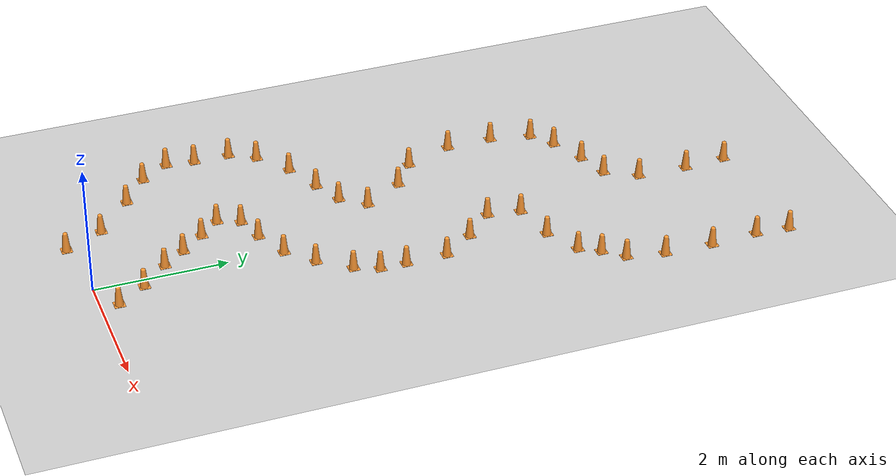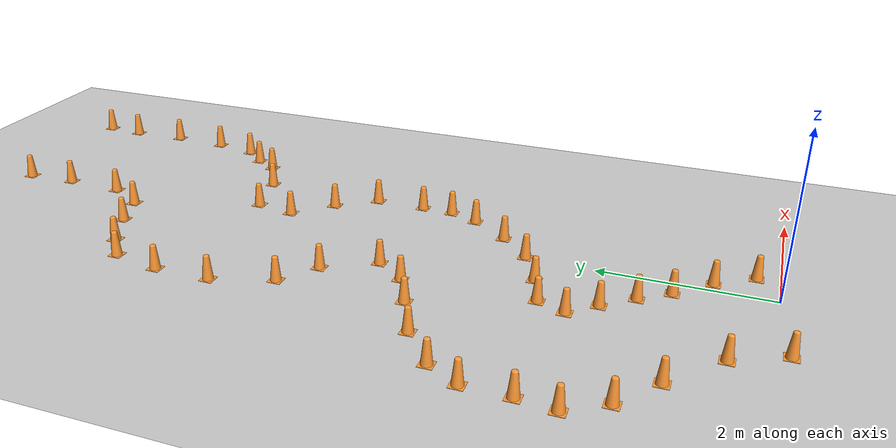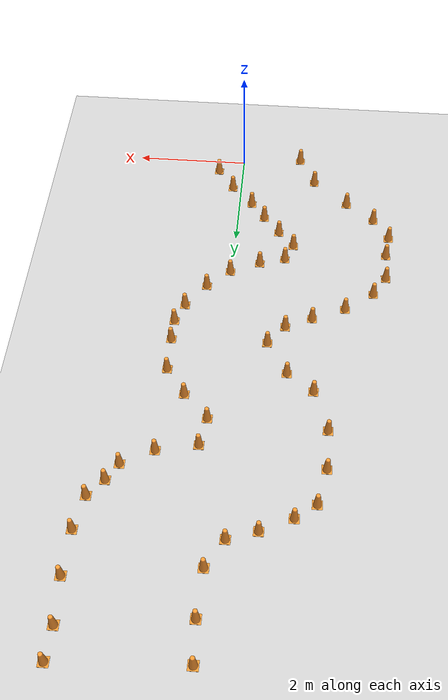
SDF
<sdf version="1.7">
 <world name="default">
  <light name="sun" type="directional">
   <pose>0 0 10 0 -0 0</pose>
   <diffuse>0.8 0.8 0.8 1</diffuse>
   <specular>0.2 0.2 0.2 1</specular>
   <attenuation>
    <range>1000</range>
    <constant>0.9</constant>
    <linear>0.01</linear>
    <quadratic>0.001</quadratic>
   </attenuation>
   <direction>-0.5 0.1 -0.9</direction>
   <spot><inner_angle>0</inner_angle><outer_angle>0</outer_angle><falloff>0</falloff></spot>
  </light>
  <model name="ground_plane">
   <static>1</static>
   <link name="link">
    <collision name="collision">
     <geometry><plane><normal>0 0 1</normal><size>100 100</size></plane></geometry>
     <surface>
      <contact><collide_bitmask>65535</collide_bitmask></contact>
      <friction><ode><mu>100</mu><mu2>50</mu2></ode></friction>
     </surface>
    </collision>
    <visual name="visual">
     <cast_shadows>0</cast_shadows>
     <geometry><plane><normal>0 0 1</normal><size>100 100</size></plane></geometry>
     <material>
      <script><uri>file://media/materials/scripts/gazebo.material</uri><name>Gazebo/Grey</name></script>
     </material>
    </visual>
   </link>
  </model>
  <gravity>0 0 -9.8</gravity>
  <magnetic_field>6e-06 2.3e-05 -4.2e-05</magnetic_field>
  <atmosphere type="adiabatic"/>
  <physics type="ode">
   <max_step_size>0.001</max_step_size>
   <real_time_factor>1</real_time_factor>
   <real_time_update_rate>1000</real_time_update_rate>
  </physics>
  <scene><ambient>0.4 0.4 0.4 1</ambient><background>0.7 0.7 0.7 1</background><shadows>1</shadows></scene>
  <spherical_coordinates>
   <surface_model>EARTH_WGS84</surface_model>
   <latitude_deg>0</latitude_deg>
   <longitude_deg>0</longitude_deg>
   <elevation>0</elevation>
   <heading_deg>0</heading_deg>
  </spherical_coordinates>
  <model name="cone">
   <pose>-1.09155 -0.129069 0.004992 1.57079 3e-06 2e-05</pose>
   <static>0</static>
   <link name="cone_link">
    <inertial>
     <mass>1</mass>
     <inertia><ixx>0.083</ixx><ixy>0</ixy><ixz>0</ixz><iyy>0.083</iyy><iyz>0</iyz><izz>0.083</izz></inertia>
    </inertial>
    <visual name="cone_visual">
     <material>
      <ambient>1 0.6 0.2 1</ambient>
      <diffuse>1 0.6 0.2 1</diffuse>
      <specular>0 0 0 0</specular>
      <emissive>0 0 0 1</emissive>
     </material>
     <geometry><mesh><uri>model://good_cone/meshes/cone.stl</uri><scale>0.001 0.001 0.001</scale></mesh></geometry>
    </visual>
    <collision name="cone_collision">
     <geometry><mesh><uri>model://good_cone/meshes/cone.stl</uri><scale>0.001 0.001 0.001</scale></mesh></geometry>
    </collision>
   </link>
  </model>
  <model name="cone_clone">
   <pose>-1.38096 0.458029 0.004999 1.57079 -3e-06 9e-06</pose>
   <static>0</static>
   <link name="cone_link">
    <inertial>
     <mass>1</mass>
     <inertia><ixx>0.083</ixx><ixy>0</ixy><ixz>0</ixz><iyy>0.083</iyy><iyz>0</iyz><izz>0.083</izz></inertia>
    </inertial>
    <visual name="cone_visual">
     <material>
      <ambient>1 0.6 0.2 1</ambient>
      <diffuse>1 0.6 0.2 1</diffuse>
      <specular>0 0 0 0</specular>
      <emissive>0 0 0 1</emissive>
     </material>
     <geometry><mesh><uri>model://good_cone/meshes/cone.stl</uri><scale>0.001 0.001 0.001</scale></mesh></geometry>
    </visual>
    <collision name="cone_collision">
     <geometry><mesh><uri>model://good_cone/meshes/cone.stl</uri><scale>0.001 0.001 0.001</scale></mesh></geometry>
    </collision>
   </link>
  </model>
  <model name="cone_clone_0">
   <pose>-2 1 0.004997 1.5708 -3e-06 3e-06</pose>
   <static>0</static>
   <link name="cone_link">
    <inertial>
     <mass>1</mass>
     <inertia><ixx>0.083</ixx><ixy>0</ixy><ixz>0</ixz><iyy>0.083</iyy><iyz>0</iyz><izz>0.083</izz></inertia>
    </inertial>
    <visual name="cone_visual">
     <material>
      <ambient>1 0.6 0.2 1</ambient>
      <diffuse>1 0.6 0.2 1</diffuse>
      <specular>0 0 0 0</specular>
      <emissive>0 0 0 1</emissive>
     </material>
     <geometry><mesh><uri>model://good_cone/meshes/cone.stl</uri><scale>0.001 0.001 0.001</scale></mesh></geometry>
    </visual>
    <collision name="cone_collision">
     <geometry><mesh><uri>model://good_cone/meshes/cone.stl</uri><scale>0.001 0.001 0.001</scale></mesh></geometry>
    </collision>
   </link>
  </model>
  <model name="cone_clone_1">
   <pose>-2.49827 1.38008 0.004999 1.57079 -5e-06 1.9e-05</pose>
   <static>0</static>
   <link name="cone_link">
    <inertial>
     <mass>1</mass>
     <inertia><ixx>0.083</ixx><ixy>0</ixy><ixz>0</ixz><iyy>0.083</iyy><iyz>0</iyz><izz>0.083</izz></inertia>
    </inertial>
    <visual name="cone_visual">
     <material>
      <ambient>1 0.6 0.2 1</ambient>
      <diffuse>1 0.6 0.2 1</diffuse>
      <specular>0 0 0 0</specular>
      <emissive>0 0 0 1</emissive>
     </material>
     <geometry><mesh><uri>model://good_cone/meshes/cone.stl</uri><scale>0.001 0.001 0.001</scale></mesh></geometry>
    </visual>
    <collision name="cone_collision">
     <geometry><mesh><uri>model://good_cone/meshes/cone.stl</uri><scale>0.001 0.001 0.001</scale></mesh></geometry>
    </collision>
   </link>
  </model>
  <model name="cone_clone_2">
   <pose>-2.77643 1.81388 0.004999 1.5708 -4e-06 6e-06</pose>
   <static>0</static>
   <link name="cone_link">
    <inertial>
     <mass>1</mass>
     <inertia><ixx>0.083</ixx><ixy>0</ixy><ixz>0</ixz><iyy>0.083</iyy><iyz>0</iyz><izz>0.083</izz></inertia>
    </inertial>
    <visual name="cone_visual">
     <material>
      <ambient>1 0.6 0.2 1</ambient>
      <diffuse>1 0.6 0.2 1</diffuse>
      <specular>0 0 0 0</specular>
      <emissive>0 0 0 1</emissive>
     </material>
     <geometry><mesh><uri>model://good_cone/meshes/cone.stl</uri><scale>0.001 0.001 0.001</scale></mesh></geometry>
    </visual>
    <collision name="cone_collision">
     <geometry><mesh><uri>model://good_cone/meshes/cone.stl</uri><scale>0.001 0.001 0.001</scale></mesh></geometry>
    </collision>
   </link>
  </model>
  <model name="cone_clone_3">
   <pose>-2.72163 2.24404 0.004999 1.57079 -5e-06 1.1e-05</pose>
   <static>0</static>
   <link name="cone_link">
    <inertial>
     <mass>1</mass>
     <inertia><ixx>0.083</ixx><ixy>0</ixy><ixz>0</ixz><iyy>0.083</iyy><iyz>0</iyz><izz>0.083</izz></inertia>
    </inertial>
    <visual name="cone_visual">
     <material>
      <ambient>1 0.6 0.2 1</ambient>
      <diffuse>1 0.6 0.2 1</diffuse>
      <specular>0 0 0 0</specular>
      <emissive>0 0 0 1</emissive>
     </material>
     <geometry><mesh><uri>model://good_cone/meshes/cone.stl</uri><scale>0.001 0.001 0.001</scale></mesh></geometry>
    </visual>
    <collision name="cone_collision">
     <geometry><mesh><uri>model://good_cone/meshes/cone.stl</uri><scale>0.001 0.001 0.001</scale></mesh></geometry>
    </collision>
   </link>
  </model>
  <model name="cone_clone_4">
   <pose>-2.71635 2.78369 0.004999 1.57079 -3e-06 2.1e-05</pose>
   <static>0</static>
   <link name="cone_link">
    <inertial>
     <mass>1</mass>
     <inertia><ixx>0.083</ixx><ixy>0</ixy><ixz>0</ixz><iyy>0.083</iyy><iyz>0</iyz><izz>0.083</izz></inertia>
    </inertial>
    <visual name="cone_visual">
     <material>
      <ambient>1 0.6 0.2 1</ambient>
      <diffuse>1 0.6 0.2 1</diffuse>
      <specular>0 0 0 0</specular>
      <emissive>0 0 0 1</emissive>
     </material>
     <geometry><mesh><uri>model://good_cone/meshes/cone.stl</uri><scale>0.001 0.001 0.001</scale></mesh></geometry>
    </visual>
    <collision name="cone_collision">
     <geometry><mesh><uri>model://good_cone/meshes/cone.stl</uri><scale>0.001 0.001 0.001</scale></mesh></geometry>
    </collision>
   </link>
  </model>
  <model name="cone_clone_5">
   <pose>-2.49564 3.16594 0.004999 1.57079 -3e-06 2.2e-05</pose>
   <static>0</static>
   <link name="cone_link">
    <inertial>
     <mass>1</mass>
     <inertia><ixx>0.083</ixx><ixy>0</ixy><ixz>0</ixz><iyy>0.083</iyy><iyz>0</iyz><izz>0.083</izz></inertia>
    </inertial>
    <visual name="cone_visual">
     <material>
      <ambient>1 0.6 0.2 1</ambient>
      <diffuse>1 0.6 0.2 1</diffuse>
      <specular>0 0 0 0</specular>
      <emissive>0 0 0 1</emissive>
     </material>
     <geometry><mesh><uri>model://good_cone/meshes/cone.stl</uri><scale>0.001 0.001 0.001</scale></mesh></geometry>
    </visual>
    <collision name="cone_collision">
     <geometry><mesh><uri>model://good_cone/meshes/cone.stl</uri><scale>0.001 0.001 0.001</scale></mesh></geometry>
    </collision>
   </link>
  </model>
  <model name="cone_clone_6">
   <pose>-2.0084 3.53918 0.004999 1.57079 -3e-06 1.8e-05</pose>
   <static>0</static>
   <link name="cone_link">
    <inertial>
     <mass>1</mass>
     <inertia><ixx>0.083</ixx><ixy>0</ixy><ixz>0</ixz><iyy>0.083</iyy><iyz>0</iyz><izz>0.083</izz></inertia>
    </inertial>
    <visual name="cone_visual">
     <material>
      <ambient>1 0.6 0.2 1</ambient>
      <diffuse>1 0.6 0.2 1</diffuse>
      <specular>0 0 0 0</specular>
      <emissive>0 0 0 1</emissive>
     </material>
     <geometry><mesh><uri>model://good_cone/meshes/cone.stl</uri><scale>0.001 0.001 0.001</scale></mesh></geometry>
    </visual>
    <collision name="cone_collision">
     <geometry><mesh><uri>model://good_cone/meshes/cone.stl</uri><scale>0.001 0.001 0.001</scale></mesh></geometry>
    </collision>
   </link>
  </model>
  <model name="cone_clone_7">
   <pose>-1.44962 3.78834 0.004999 1.57079 -3e-06 1.5e-05</pose>
   <static>0</static>
   <link name="cone_link">
    <inertial>
     <mass>1</mass>
     <inertia><ixx>0.083</ixx><ixy>0</ixy><ixz>0</ixz><iyy>0.083</iyy><iyz>0</iyz><izz>0.083</izz></inertia>
    </inertial>
    <visual name="cone_visual">
     <material>
      <ambient>1 0.6 0.2 1</ambient>
      <diffuse>1 0.6 0.2 1</diffuse>
      <specular>0 0 0 0</specular>
      <emissive>0 0 0 1</emissive>
     </material>
     <geometry><mesh><uri>model://good_cone/meshes/cone.stl</uri><scale>0.001 0.001 0.001</scale></mesh></geometry>
    </visual>
    <collision name="cone_collision">
     <geometry><mesh><uri>model://good_cone/meshes/cone.stl</uri><scale>0.001 0.001 0.001</scale></mesh></geometry>
    </collision>
   </link>
  </model>
  <model name="cone_clone_8">
   <pose>-1 4 0.005 1.5708 -0 2.2e-05</pose>
   <static>0</static>
   <link name="cone_link">
    <inertial>
     <mass>1</mass>
     <inertia><ixx>0.083</ixx><ixy>0</ixy><ixz>0</ixz><iyy>0.083</iyy><iyz>0</iyz><izz>0.083</izz></inertia>
    </inertial>
    <visual name="cone_visual">
     <material>
      <ambient>1 0.6 0.2 1</ambient>
      <diffuse>1 0.6 0.2 1</diffuse>
      <specular>0 0 0 0</specular>
      <emissive>0 0 0 1</emissive>
     </material>
     <geometry><mesh><uri>model://good_cone/meshes/cone.stl</uri><scale>0.001 0.001 0.001</scale></mesh></geometry>
    </visual>
    <collision name="cone_collision">
     <geometry><mesh><uri>model://good_cone/meshes/cone.stl</uri><scale>0.001 0.001 0.001</scale></mesh></geometry>
    </collision>
   </link>
  </model>
  <model name="cone_clone_9">
   <pose>-0.717053 4.36338 0.004999 1.57079 -3e-06 1.2e-05</pose>
   <static>0</static>
   <link name="cone_link">
    <inertial>
     <mass>1</mass>
     <inertia><ixx>0.083</ixx><ixy>0</ixy><ixz>0</ixz><iyy>0.083</iyy><iyz>0</iyz><izz>0.083</izz></inertia>
    </inertial>
    <visual name="cone_visual">
     <material>
      <ambient>1 0.6 0.2 1</ambient>
      <diffuse>1 0.6 0.2 1</diffuse>
      <specular>0 0 0 0</specular>
      <emissive>0 0 0 1</emissive>
     </material>
     <geometry><mesh><uri>model://good_cone/meshes/cone.stl</uri><scale>0.001 0.001 0.001</scale></mesh></geometry>
    </visual>
    <collision name="cone_collision">
     <geometry><mesh><uri>model://good_cone/meshes/cone.stl</uri><scale>0.001 0.001 0.001</scale></mesh></geometry>
    </collision>
   </link>
  </model>
  <model name="cone_clone_10">
   <pose>-1.07407 4.96708 0.004999 1.57079 -5e-06 1.3e-05</pose>
   <static>0</static>
   <link name="cone_link">
    <inertial>
     <mass>1</mass>
     <inertia><ixx>0.083</ixx><ixy>0</ixy><ixz>0</ixz><iyy>0.083</iyy><iyz>0</iyz><izz>0.083</izz></inertia>
    </inertial>
    <visual name="cone_visual">
     <material>
      <ambient>1 0.6 0.2 1</ambient>
      <diffuse>1 0.6 0.2 1</diffuse>
      <specular>0 0 0 0</specular>
      <emissive>0 0 0 1</emissive>
     </material>
     <geometry><mesh><uri>model://good_cone/meshes/cone.stl</uri><scale>0.001 0.001 0.001</scale></mesh></geometry>
    </visual>
    <collision name="cone_collision">
     <geometry><mesh><uri>model://good_cone/meshes/cone.stl</uri><scale>0.001 0.001 0.001</scale></mesh></geometry>
    </collision>
   </link>
  </model>
  <model name="cone_clone_11">
   <pose>-1.52345 5.29757 0.004999 1.57079 -3e-06 2.2e-05</pose>
   <static>0</static>
   <link name="cone_link">
    <inertial>
     <mass>1</mass>
     <inertia><ixx>0.083</ixx><ixy>0</ixy><ixz>0</ixz><iyy>0.083</iyy><iyz>0</iyz><izz>0.083</izz></inertia>
    </inertial>
    <visual name="cone_visual">
     <material>
      <ambient>1 0.6 0.2 1</ambient>
      <diffuse>1 0.6 0.2 1</diffuse>
      <specular>0 0 0 0</specular>
      <emissive>0 0 0 1</emissive>
     </material>
     <geometry><mesh><uri>model://good_cone/meshes/cone.stl</uri><scale>0.001 0.001 0.001</scale></mesh></geometry>
    </visual>
    <collision name="cone_collision">
     <geometry><mesh><uri>model://good_cone/meshes/cone.stl</uri><scale>0.001 0.001 0.001</scale></mesh></geometry>
    </collision>
   </link>
  </model>
  <model name="cone_clone_12">
   <pose>-1.77697 6.02306 0.005 1.57079 -0 2e-06</pose>
   <static>0</static>
   <link name="cone_link">
    <inertial>
     <mass>1</mass>
     <inertia><ixx>0.083</ixx><ixy>0</ixy><ixz>0</ixz><iyy>0.083</iyy><iyz>0</iyz><izz>0.083</izz></inertia>
    </inertial>
    <visual name="cone_visual">
     <material>
      <ambient>1 0.6 0.2 1</ambient>
      <diffuse>1 0.6 0.2 1</diffuse>
      <specular>0 0 0 0</specular>
      <emissive>0 0 0 1</emissive>
     </material>
     <geometry><mesh><uri>model://good_cone/meshes/cone.stl</uri><scale>0.001 0.001 0.001</scale></mesh></geometry>
    </visual>
    <collision name="cone_collision">
     <geometry><mesh><uri>model://good_cone/meshes/cone.stl</uri><scale>0.001 0.001 0.001</scale></mesh></geometry>
    </collision>
   </link>
  </model>
  <model name="cone_clone_13">
   <pose>-1.77661 6.72022 0.005 1.5708 -5e-06 1.4e-05</pose>
   <static>0</static>
   <link name="cone_link">
    <inertial>
     <mass>1</mass>
     <inertia><ixx>0.083</ixx><ixy>0</ixy><ixz>0</ixz><iyy>0.083</iyy><iyz>0</iyz><izz>0.083</izz></inertia>
    </inertial>
    <visual name="cone_visual">
     <material>
      <ambient>1 0.6 0.2 1</ambient>
      <diffuse>1 0.6 0.2 1</diffuse>
      <specular>0 0 0 0</specular>
      <emissive>0 0 0 1</emissive>
     </material>
     <geometry><mesh><uri>model://good_cone/meshes/cone.stl</uri><scale>0.001 0.001 0.001</scale></mesh></geometry>
    </visual>
    <collision name="cone_collision">
     <geometry><mesh><uri>model://good_cone/meshes/cone.stl</uri><scale>0.001 0.001 0.001</scale></mesh></geometry>
    </collision>
   </link>
  </model>
  <model name="cone_clone_14">
   <pose>-1.64803 7.33504 0.004999 1.57079 -3e-06 3e-05</pose>
   <static>0</static>
   <link name="cone_link">
    <inertial>
     <mass>1</mass>
     <inertia><ixx>0.083</ixx><ixy>0</ixy><ixz>0</ixz><iyy>0.083</iyy><iyz>0</iyz><izz>0.083</izz></inertia>
    </inertial>
    <visual name="cone_visual">
     <material>
      <ambient>1 0.6 0.2 1</ambient>
      <diffuse>1 0.6 0.2 1</diffuse>
      <specular>0 0 0 0</specular>
      <emissive>0 0 0 1</emissive>
     </material>
     <geometry><mesh><uri>model://good_cone/meshes/cone.stl</uri><scale>0.001 0.001 0.001</scale></mesh></geometry>
    </visual>
    <collision name="cone_collision">
     <geometry><mesh><uri>model://good_cone/meshes/cone.stl</uri><scale>0.001 0.001 0.001</scale></mesh></geometry>
    </collision>
   </link>
  </model>
  <model name="cone_clone_15">
   <pose>-1.31311 7.59105 0.004991 1.5708 5e-06 1e-06</pose>
   <static>0</static>
   <link name="cone_link">
    <inertial>
     <mass>1</mass>
     <inertia><ixx>0.083</ixx><ixy>0</ixy><ixz>0</ixz><iyy>0.083</iyy><iyz>0</iyz><izz>0.083</izz></inertia>
    </inertial>
    <visual name="cone_visual">
     <material>
      <ambient>1 0.6 0.2 1</ambient>
      <diffuse>1 0.6 0.2 1</diffuse>
      <specular>0 0 0 0</specular>
      <emissive>0 0 0 1</emissive>
     </material>
     <geometry><mesh><uri>model://good_cone/meshes/cone.stl</uri><scale>0.001 0.001 0.001</scale></mesh></geometry>
    </visual>
    <collision name="cone_collision">
     <geometry><mesh><uri>model://good_cone/meshes/cone.stl</uri><scale>0.001 0.001 0.001</scale></mesh></geometry>
    </collision>
   </link>
  </model>
  <model name="cone_clone_16">
   <pose>-0.799496 7.83721 0.004993 1.57079 3e-06 5e-06</pose>
   <static>0</static>
   <link name="cone_link">
    <inertial>
     <mass>1</mass>
     <inertia><ixx>0.083</ixx><ixy>0</ixy><ixz>0</ixz><iyy>0.083</iyy><iyz>0</iyz><izz>0.083</izz></inertia>
    </inertial>
    <visual name="cone_visual">
     <material>
      <ambient>1 0.6 0.2 1</ambient>
      <diffuse>1 0.6 0.2 1</diffuse>
      <specular>0 0 0 0</specular>
      <emissive>0 0 0 1</emissive>
     </material>
     <geometry><mesh><uri>model://good_cone/meshes/cone.stl</uri><scale>0.001 0.001 0.001</scale></mesh></geometry>
    </visual>
    <collision name="cone_collision">
     <geometry><mesh><uri>model://good_cone/meshes/cone.stl</uri><scale>0.001 0.001 0.001</scale></mesh></geometry>
    </collision>
   </link>
  </model>
  <model name="cone_clone_17">
   <pose>-0.321672 8.00231 0.005 1.5708 -0 2e-06</pose>
   <static>0</static>
   <link name="cone_link">
    <inertial>
     <mass>1</mass>
     <inertia><ixx>0.083</ixx><ixy>0</ixy><ixz>0</ixz><iyy>0.083</iyy><iyz>0</iyz><izz>0.083</izz></inertia>
    </inertial>
    <visual name="cone_visual">
     <material>
      <ambient>1 0.6 0.2 1</ambient>
      <diffuse>1 0.6 0.2 1</diffuse>
      <specular>0 0 0 0</specular>
      <emissive>0 0 0 1</emissive>
     </material>
     <geometry><mesh><uri>model://good_cone/meshes/cone.stl</uri><scale>0.001 0.001 0.001</scale></mesh></geometry>
    </visual>
    <collision name="cone_collision">
     <geometry><mesh><uri>model://good_cone/meshes/cone.stl</uri><scale>0.001 0.001 0.001</scale></mesh></geometry>
    </collision>
   </link>
  </model>
  <model name="cone_clone_18">
   <pose>-0.051546 8.46904 0.004999 1.57079 -4e-06 1.1e-05</pose>
   <static>0</static>
   <link name="cone_link">
    <inertial>
     <mass>1</mass>
     <inertia><ixx>0.083</ixx><ixy>0</ixy><ixz>0</ixz><iyy>0.083</iyy><iyz>0</iyz><izz>0.083</izz></inertia>
    </inertial>
    <visual name="cone_visual">
     <material>
      <ambient>1 0.6 0.2 1</ambient>
      <diffuse>1 0.6 0.2 1</diffuse>
      <specular>0 0 0 0</specular>
      <emissive>0 0 0 1</emissive>
     </material>
     <geometry><mesh><uri>model://good_cone/meshes/cone.stl</uri><scale>0.001 0.001 0.001</scale></mesh></geometry>
    </visual>
    <collision name="cone_collision">
     <geometry><mesh><uri>model://good_cone/meshes/cone.stl</uri><scale>0.001 0.001 0.001</scale></mesh></geometry>
    </collision>
   </link>
  </model>
  <model name="cone_clone_19">
   <pose>-0.01863 9.23091 0.004999 1.57079 -3e-06 1.9e-05</pose>
   <static>0</static>
   <link name="cone_link">
    <inertial>
     <mass>1</mass>
     <inertia><ixx>0.083</ixx><ixy>0</ixy><ixz>0</ixz><iyy>0.083</iyy><iyz>0</iyz><izz>0.083</izz></inertia>
    </inertial>
    <visual name="cone_visual">
     <material>
      <ambient>1 0.6 0.2 1</ambient>
      <diffuse>1 0.6 0.2 1</diffuse>
      <specular>0 0 0 0</specular>
      <emissive>0 0 0 1</emissive>
     </material>
     <geometry><mesh><uri>model://good_cone/meshes/cone.stl</uri><scale>0.001 0.001 0.001</scale></mesh></geometry>
    </visual>
    <collision name="cone_collision">
     <geometry><mesh><uri>model://good_cone/meshes/cone.stl</uri><scale>0.001 0.001 0.001</scale></mesh></geometry>
    </collision>
   </link>
  </model>
  <model name="cone_clone_20">
   <pose>-0.051414 9.8788 0.005 1.5708 4e-06 3e-06</pose>
   <static>0</static>
   <link name="cone_link">
    <inertial>
     <mass>1</mass>
     <inertia><ixx>0.083</ixx><ixy>0</ixy><ixz>0</ixz><iyy>0.083</iyy><iyz>0</iyz><izz>0.083</izz></inertia>
    </inertial>
    <visual name="cone_visual">
     <material>
      <ambient>1 0.6 0.2 1</ambient>
      <diffuse>1 0.6 0.2 1</diffuse>
      <specular>0 0 0 0</specular>
      <emissive>0 0 0 1</emissive>
     </material>
     <geometry><mesh><uri>model://good_cone/meshes/cone.stl</uri><scale>0.001 0.001 0.001</scale></mesh></geometry>
    </visual>
    <collision name="cone_collision">
     <geometry><mesh><uri>model://good_cone/meshes/cone.stl</uri><scale>0.001 0.001 0.001</scale></mesh></geometry>
    </collision>
   </link>
  </model>
  <model name="cone_clone_21">
   <pose>0.459665 0.265155 0.004999 1.57079 -3e-06 2.5e-05</pose>
   <static>0</static>
   <link name="cone_link">
    <inertial>
     <mass>1</mass>
     <inertia><ixx>0.083</ixx><ixy>0</ixy><ixz>0</ixz><iyy>0.083</iyy><iyz>0</iyz><izz>0.083</izz></inertia>
    </inertial>
    <visual name="cone_visual">
     <material>
      <ambient>1 0.6 0.2 1</ambient>
      <diffuse>1 0.6 0.2 1</diffuse>
      <specular>0 0 0 0</specular>
      <emissive>0 0 0 1</emissive>
     </material>
     <geometry><mesh><uri>model://good_cone/meshes/cone.stl</uri><scale>0.001 0.001 0.001</scale></mesh></geometry>
    </visual>
    <collision name="cone_collision">
     <geometry><mesh><uri>model://good_cone/meshes/cone.stl</uri><scale>0.001 0.001 0.001</scale></mesh></geometry>
    </collision>
   </link>
  </model>
  <model name="cone_clone_22">
   <pose>0.157638 0.70832 0.005 1.5708 -0 2e-05</pose>
   <static>0</static>
   <link name="cone_link">
    <inertial>
     <mass>1</mass>
     <inertia><ixx>0.083</ixx><ixy>0</ixy><ixz>0</ixz><iyy>0.083</iyy><iyz>0</iyz><izz>0.083</izz></inertia>
    </inertial>
    <visual name="cone_visual">
     <material>
      <ambient>1 0.6 0.2 1</ambient>
      <diffuse>1 0.6 0.2 1</diffuse>
      <specular>0 0 0 0</specular>
      <emissive>0 0 0 1</emissive>
     </material>
     <geometry><mesh><uri>model://good_cone/meshes/cone.stl</uri><scale>0.001 0.001 0.001</scale></mesh></geometry>
    </visual>
    <collision name="cone_collision">
     <geometry><mesh><uri>model://good_cone/meshes/cone.stl</uri><scale>0.001 0.001 0.001</scale></mesh></geometry>
    </collision>
   </link>
  </model>
  <model name="cone_clone_23">
   <pose>-0.22945 1.11189 0.004999 1.57079 -3e-06 1.2e-05</pose>
   <static>0</static>
   <link name="cone_link">
    <inertial>
     <mass>1</mass>
     <inertia><ixx>0.083</ixx><ixy>0</ixy><ixz>0</ixz><iyy>0.083</iyy><iyz>0</iyz><izz>0.083</izz></inertia>
    </inertial>
    <visual name="cone_visual">
     <material>
      <ambient>1 0.6 0.2 1</ambient>
      <diffuse>1 0.6 0.2 1</diffuse>
      <specular>0 0 0 0</specular>
      <emissive>0 0 0 1</emissive>
     </material>
     <geometry><mesh><uri>model://good_cone/meshes/cone.stl</uri><scale>0.001 0.001 0.001</scale></mesh></geometry>
    </visual>
    <collision name="cone_collision">
     <geometry><mesh><uri>model://good_cone/meshes/cone.stl</uri><scale>0.001 0.001 0.001</scale></mesh></geometry>
    </collision>
   </link>
  </model>
  <model name="cone_clone_24">
   <pose>-0.485588 1.45669 0.005 1.5708 -0 2.4e-05</pose>
   <static>0</static>
   <link name="cone_link">
    <inertial>
     <mass>1</mass>
     <inertia><ixx>0.083</ixx><ixy>0</ixy><ixz>0</ixz><iyy>0.083</iyy><iyz>0</iyz><izz>0.083</izz></inertia>
    </inertial>
    <visual name="cone_visual">
     <material>
      <ambient>1 0.6 0.2 1</ambient>
      <diffuse>1 0.6 0.2 1</diffuse>
      <specular>0 0 0 0</specular>
      <emissive>0 0 0 1</emissive>
     </material>
     <geometry><mesh><uri>model://good_cone/meshes/cone.stl</uri><scale>0.001 0.001 0.001</scale></mesh></geometry>
    </visual>
    <collision name="cone_collision">
     <geometry><mesh><uri>model://good_cone/meshes/cone.stl</uri><scale>0.001 0.001 0.001</scale></mesh></geometry>
    </collision>
   </link>
  </model>
  <model name="cone_clone_25">
   <pose>-0.775155 1.81317 0.005 1.57079 -0 1.2e-05</pose>
   <static>0</static>
   <link name="cone_link">
    <inertial>
     <mass>1</mass>
     <inertia><ixx>0.083</ixx><ixy>0</ixy><ixz>0</ixz><iyy>0.083</iyy><iyz>0</iyz><izz>0.083</izz></inertia>
    </inertial>
    <visual name="cone_visual">
     <material>
      <ambient>1 0.6 0.2 1</ambient>
      <diffuse>1 0.6 0.2 1</diffuse>
      <specular>0 0 0 0</specular>
      <emissive>0 0 0 1</emissive>
     </material>
     <geometry><mesh><uri>model://good_cone/meshes/cone.stl</uri><scale>0.001 0.001 0.001</scale></mesh></geometry>
    </visual>
    <collision name="cone_collision">
     <geometry><mesh><uri>model://good_cone/meshes/cone.stl</uri><scale>0.001 0.001 0.001</scale></mesh></geometry>
    </collision>
   </link>
  </model>
  <model name="cone_clone_26">
   <pose>-1.0523 2.12305 0.005 1.5708 -0 1.3e-05</pose>
   <static>0</static>
   <link name="cone_link">
    <inertial>
     <mass>1</mass>
     <inertia><ixx>0.083</ixx><ixy>0</ixy><ixz>0</ixz><iyy>0.083</iyy><iyz>0</iyz><izz>0.083</izz></inertia>
    </inertial>
    <visual name="cone_visual">
     <material>
      <ambient>1 0.6 0.2 1</ambient>
      <diffuse>1 0.6 0.2 1</diffuse>
      <specular>0 0 0 0</specular>
      <emissive>0 0 0 1</emissive>
     </material>
     <geometry><mesh><uri>model://good_cone/meshes/cone.stl</uri><scale>0.001 0.001 0.001</scale></mesh></geometry>
    </visual>
    <collision name="cone_collision">
     <geometry><mesh><uri>model://good_cone/meshes/cone.stl</uri><scale>0.001 0.001 0.001</scale></mesh></geometry>
    </collision>
   </link>
  </model>
  <model name="cone_clone_27">
   <pose>-0.916692 2.45594 0.004999 1.57079 -5e-06 1e-06</pose>
   <static>0</static>
   <link name="cone_link">
    <inertial>
     <mass>1</mass>
     <inertia><ixx>0.083</ixx><ixy>0</ixy><ixz>0</ixz><iyy>0.083</iyy><iyz>0</iyz><izz>0.083</izz></inertia>
    </inertial>
    <visual name="cone_visual">
     <material>
      <ambient>1 0.6 0.2 1</ambient>
      <diffuse>1 0.6 0.2 1</diffuse>
      <specular>0 0 0 0</specular>
      <emissive>0 0 0 1</emissive>
     </material>
     <geometry><mesh><uri>model://good_cone/meshes/cone.stl</uri><scale>0.001 0.001 0.001</scale></mesh></geometry>
    </visual>
    <collision name="cone_collision">
     <geometry><mesh><uri>model://good_cone/meshes/cone.stl</uri><scale>0.001 0.001 0.001</scale></mesh></geometry>
    </collision>
   </link>
  </model>
  <model name="cone_clone_28">
   <pose>-0.474531 2.59084 0.004999 1.57079 -5e-06 1e-05</pose>
   <static>0</static>
   <link name="cone_link">
    <inertial>
     <mass>1</mass>
     <inertia><ixx>0.083</ixx><ixy>0</ixy><ixz>0</ixz><iyy>0.083</iyy><iyz>0</iyz><izz>0.083</izz></inertia>
    </inertial>
    <visual name="cone_visual">
     <material>
      <ambient>1 0.6 0.2 1</ambient>
      <diffuse>1 0.6 0.2 1</diffuse>
      <specular>0 0 0 0</specular>
      <emissive>0 0 0 1</emissive>
     </material>
     <geometry><mesh><uri>model://good_cone/meshes/cone.stl</uri><scale>0.001 0.001 0.001</scale></mesh></geometry>
    </visual>
    <collision name="cone_collision">
     <geometry><mesh><uri>model://good_cone/meshes/cone.stl</uri><scale>0.001 0.001 0.001</scale></mesh></geometry>
    </collision>
   </link>
  </model>
  <model name="cone_clone_29">
   <pose>0.032959 2.82293 0.005 1.5708 1e-06 1e-06</pose>
   <static>0</static>
   <link name="cone_link">
    <inertial>
     <mass>1</mass>
     <inertia><ixx>0.083</ixx><ixy>0</ixy><ixz>0</ixz><iyy>0.083</iyy><iyz>0</iyz><izz>0.083</izz></inertia>
    </inertial>
    <visual name="cone_visual">
     <material>
      <ambient>1 0.6 0.2 1</ambient>
      <diffuse>1 0.6 0.2 1</diffuse>
      <specular>0 0 0 0</specular>
      <emissive>0 0 0 1</emissive>
     </material>
     <geometry><mesh><uri>model://good_cone/meshes/cone.stl</uri><scale>0.001 0.001 0.001</scale></mesh></geometry>
    </visual>
    <collision name="cone_collision">
     <geometry><mesh><uri>model://good_cone/meshes/cone.stl</uri><scale>0.001 0.001 0.001</scale></mesh></geometry>
    </collision>
   </link>
  </model>
  <model name="cone_clone_30">
   <pose>0.416704 3.18648 0.004993 1.57079 3e-06 1e-06</pose>
   <static>0</static>
   <link name="cone_link">
    <inertial>
     <mass>1</mass>
     <inertia><ixx>0.083</ixx><ixy>0</ixy><ixz>0</ixz><iyy>0.083</iyy><iyz>0</iyz><izz>0.083</izz></inertia>
    </inertial>
    <visual name="cone_visual">
     <material>
      <ambient>1 0.6 0.2 1</ambient>
      <diffuse>1 0.6 0.2 1</diffuse>
      <specular>0 0 0 0</specular>
      <emissive>0 0 0 1</emissive>
     </material>
     <geometry><mesh><uri>model://good_cone/meshes/cone.stl</uri><scale>0.001 0.001 0.001</scale></mesh></geometry>
    </visual>
    <collision name="cone_collision">
     <geometry><mesh><uri>model://good_cone/meshes/cone.stl</uri><scale>0.001 0.001 0.001</scale></mesh></geometry>
    </collision>
   </link>
  </model>
  <model name="cone_clone_31">
   <pose>0.750006 3.64538 0.004993 1.57079 3e-06 3e-06</pose>
   <static>0</static>
   <link name="cone_link">
    <inertial>
     <mass>1</mass>
     <inertia><ixx>0.083</ixx><ixy>0</ixy><ixz>0</ixz><iyy>0.083</iyy><iyz>0</iyz><izz>0.083</izz></inertia>
    </inertial>
    <visual name="cone_visual">
     <material>
      <ambient>1 0.6 0.2 1</ambient>
      <diffuse>1 0.6 0.2 1</diffuse>
      <specular>0 0 0 0</specular>
      <emissive>0 0 0 1</emissive>
     </material>
     <geometry><mesh><uri>model://good_cone/meshes/cone.stl</uri><scale>0.001 0.001 0.001</scale></mesh></geometry>
    </visual>
    <collision name="cone_collision">
     <geometry><mesh><uri>model://good_cone/meshes/cone.stl</uri><scale>0.001 0.001 0.001</scale></mesh></geometry>
    </collision>
   </link>
  </model>
  <model name="cone_clone_32">
   <pose>0.901349 4.39865 0.004991 1.5708 5e-06 3e-06</pose>
   <static>0</static>
   <link name="cone_link">
    <inertial>
     <mass>1</mass>
     <inertia><ixx>0.083</ixx><ixy>0</ixy><ixz>0</ixz><iyy>0.083</iyy><iyz>0</iyz><izz>0.083</izz></inertia>
    </inertial>
    <visual name="cone_visual">
     <material>
      <ambient>1 0.6 0.2 1</ambient>
      <diffuse>1 0.6 0.2 1</diffuse>
      <specular>0 0 0 0</specular>
      <emissive>0 0 0 1</emissive>
     </material>
     <geometry><mesh><uri>model://good_cone/meshes/cone.stl</uri><scale>0.001 0.001 0.001</scale></mesh></geometry>
    </visual>
    <collision name="cone_collision">
     <geometry><mesh><uri>model://good_cone/meshes/cone.stl</uri><scale>0.001 0.001 0.001</scale></mesh></geometry>
    </collision>
   </link>
  </model>
  <model name="cone_clone_33">
   <pose>0.89621 5.0221 0.005 1.5708 -2e-06 4e-06</pose>
   <static>0</static>
   <link name="cone_link">
    <inertial>
     <mass>1</mass>
     <inertia><ixx>0.083</ixx><ixy>0</ixy><ixz>0</ixz><iyy>0.083</iyy><iyz>0</iyz><izz>0.083</izz></inertia>
    </inertial>
    <visual name="cone_visual">
     <material>
      <ambient>1 0.6 0.2 1</ambient>
      <diffuse>1 0.6 0.2 1</diffuse>
      <specular>0 0 0 0</specular>
      <emissive>0 0 0 1</emissive>
     </material>
     <geometry><mesh><uri>model://good_cone/meshes/cone.stl</uri><scale>0.001 0.001 0.001</scale></mesh></geometry>
    </visual>
    <collision name="cone_collision">
     <geometry><mesh><uri>model://good_cone/meshes/cone.stl</uri><scale>0.001 0.001 0.001</scale></mesh></geometry>
    </collision>
   </link>
  </model>
  <model name="cone_clone_34">
   <pose>0.561032 5.50142 0.004999 1.57079 -3e-06 1.3e-05</pose>
   <static>0</static>
   <link name="cone_link">
    <inertial>
     <mass>1</mass>
     <inertia><ixx>0.083</ixx><ixy>0</ixy><ixz>0</ixz><iyy>0.083</iyy><iyz>0</iyz><izz>0.083</izz></inertia>
    </inertial>
    <visual name="cone_visual">
     <material>
      <ambient>1 0.6 0.2 1</ambient>
      <diffuse>1 0.6 0.2 1</diffuse>
      <specular>0 0 0 0</specular>
      <emissive>0 0 0 1</emissive>
     </material>
     <geometry><mesh><uri>model://good_cone/meshes/cone.stl</uri><scale>0.001 0.001 0.001</scale></mesh></geometry>
    </visual>
    <collision name="cone_collision">
     <geometry><mesh><uri>model://good_cone/meshes/cone.stl</uri><scale>0.001 0.001 0.001</scale></mesh></geometry>
    </collision>
   </link>
  </model>
  <model name="cone_clone_35">
   <pose>0.893771 4.00441 0.005 1.5708 -0 1.1e-05</pose>
   <static>0</static>
   <link name="cone_link">
    <inertial>
     <mass>1</mass>
     <inertia><ixx>0.083</ixx><ixy>0</ixy><ixz>0</ixz><iyy>0.083</iyy><iyz>0</iyz><izz>0.083</izz></inertia>
    </inertial>
    <visual name="cone_visual">
     <material>
      <ambient>1 0.6 0.2 1</ambient>
      <diffuse>1 0.6 0.2 1</diffuse>
      <specular>0 0 0 0</specular>
      <emissive>0 0 0 1</emissive>
     </material>
     <geometry><mesh><uri>model://good_cone/meshes/cone.stl</uri><scale>0.001 0.001 0.001</scale></mesh></geometry>
    </visual>
    <collision name="cone_collision">
     <geometry><mesh><uri>model://good_cone/meshes/cone.stl</uri><scale>0.001 0.001 0.001</scale></mesh></geometry>
    </collision>
   </link>
  </model>
  <model name="cone_clone_36">
   <pose>0.143882 5.93811 0.005 1.57079 -0 1e-06</pose>
   <static>0</static>
   <link name="cone_link">
    <inertial>
     <mass>1</mass>
     <inertia><ixx>0.083</ixx><ixy>0</ixy><ixz>0</ixz><iyy>0.083</iyy><iyz>0</iyz><izz>0.083</izz></inertia>
    </inertial>
    <visual name="cone_visual">
     <material>
      <ambient>1 0.6 0.2 1</ambient>
      <diffuse>1 0.6 0.2 1</diffuse>
      <specular>0 0 0 0</specular>
      <emissive>0 0 0 1</emissive>
     </material>
     <geometry><mesh><uri>model://good_cone/meshes/cone.stl</uri><scale>0.001 0.001 0.001</scale></mesh></geometry>
    </visual>
    <collision name="cone_collision">
     <geometry><mesh><uri>model://good_cone/meshes/cone.stl</uri><scale>0.001 0.001 0.001</scale></mesh></geometry>
    </collision>
   </link>
  </model>
  <model name="cone_clone_37">
   <pose>0.226882 6.43467 0.005 1.5708 -0 1e-06</pose>
   <static>0</static>
   <link name="cone_link">
    <inertial>
     <mass>1</mass>
     <inertia><ixx>0.083</ixx><ixy>0</ixy><ixz>0</ixz><iyy>0.083</iyy><iyz>0</iyz><izz>0.083</izz></inertia>
    </inertial>
    <visual name="cone_visual">
     <material>
      <ambient>1 0.6 0.2 1</ambient>
      <diffuse>1 0.6 0.2 1</diffuse>
      <specular>0 0 0 0</specular>
      <emissive>0 0 0 1</emissive>
     </material>
     <geometry><mesh><uri>model://good_cone/meshes/cone.stl</uri><scale>0.001 0.001 0.001</scale></mesh></geometry>
    </visual>
    <collision name="cone_collision">
     <geometry><mesh><uri>model://good_cone/meshes/cone.stl</uri><scale>0.001 0.001 0.001</scale></mesh></geometry>
    </collision>
   </link>
  </model>
  <model name="cone_clone_38">
   <pose>0.895214 6.58164 0.005 1.5708 -0 1e-06</pose>
   <static>0</static>
   <link name="cone_link">
    <inertial>
     <mass>1</mass>
     <inertia><ixx>0.083</ixx><ixy>0</ixy><ixz>0</ixz><iyy>0.083</iyy><iyz>0</iyz><izz>0.083</izz></inertia>
    </inertial>
    <visual name="cone_visual">
     <material>
      <ambient>1 0.6 0.2 1</ambient>
      <diffuse>1 0.6 0.2 1</diffuse>
      <specular>0 0 0 0</specular>
      <emissive>0 0 0 1</emissive>
     </material>
     <geometry><mesh><uri>model://good_cone/meshes/cone.stl</uri><scale>0.001 0.001 0.001</scale></mesh></geometry>
    </visual>
    <collision name="cone_collision">
     <geometry><mesh><uri>model://good_cone/meshes/cone.stl</uri><scale>0.001 0.001 0.001</scale></mesh></geometry>
    </collision>
   </link>
  </model>
  <model name="cone_clone_39">
   <pose>1.41072 6.85968 0.005 1.5708 -0 1e-06</pose>
   <static>0</static>
   <link name="cone_link">
    <inertial>
     <mass>1</mass>
     <inertia><ixx>0.083</ixx><ixy>0</ixy><ixz>0</ixz><iyy>0.083</iyy><iyz>0</iyz><izz>0.083</izz></inertia>
    </inertial>
    <visual name="cone_visual">
     <material>
      <ambient>1 0.6 0.2 1</ambient>
      <diffuse>1 0.6 0.2 1</diffuse>
      <specular>0 0 0 0</specular>
      <emissive>0 0 0 1</emissive>
     </material>
     <geometry><mesh><uri>model://good_cone/meshes/cone.stl</uri><scale>0.001 0.001 0.001</scale></mesh></geometry>
    </visual>
    <collision name="cone_collision">
     <geometry><mesh><uri>model://good_cone/meshes/cone.stl</uri><scale>0.001 0.001 0.001</scale></mesh></geometry>
    </collision>
   </link>
  </model>
  <model name="cone_clone_40">
   <pose>1.58683 7.15592 0.005 1.5708 -0 1e-06</pose>
   <static>0</static>
   <link name="cone_link">
    <inertial>
     <mass>1</mass>
     <inertia><ixx>0.083</ixx><ixy>0</ixy><ixz>0</ixz><iyy>0.083</iyy><iyz>0</iyz><izz>0.083</izz></inertia>
    </inertial>
    <visual name="cone_visual">
     <material>
      <ambient>1 0.6 0.2 1</ambient>
      <diffuse>1 0.6 0.2 1</diffuse>
      <specular>0 0 0 0</specular>
      <emissive>0 0 0 1</emissive>
     </material>
     <geometry><mesh><uri>model://good_cone/meshes/cone.stl</uri><scale>0.001 0.001 0.001</scale></mesh></geometry>
    </visual>
    <collision name="cone_collision">
     <geometry><mesh><uri>model://good_cone/meshes/cone.stl</uri><scale>0.001 0.001 0.001</scale></mesh></geometry>
    </collision>
   </link>
  </model>
  <model name="cone_clone_41">
   <pose>1.83207 7.44284 0.005 1.57079 -0 1e-06</pose>
   <static>0</static>
   <link name="cone_link">
    <inertial>
     <mass>1</mass>
     <inertia><ixx>0.083</ixx><ixy>0</ixy><ixz>0</ixz><iyy>0.083</iyy><iyz>0</iyz><izz>0.083</izz></inertia>
    </inertial>
    <visual name="cone_visual">
     <material>
      <ambient>1 0.6 0.2 1</ambient>
      <diffuse>1 0.6 0.2 1</diffuse>
      <specular>0 0 0 0</specular>
      <emissive>0 0 0 1</emissive>
     </material>
     <geometry><mesh><uri>model://good_cone/meshes/cone.stl</uri><scale>0.001 0.001 0.001</scale></mesh></geometry>
    </visual>
    <collision name="cone_collision">
     <geometry><mesh><uri>model://good_cone/meshes/cone.stl</uri><scale>0.001 0.001 0.001</scale></mesh></geometry>
    </collision>
   </link>
  </model>
  <model name="cone_clone_42">
   <pose>1.94249 8.00965 0.005 1.57079 -0 1e-06</pose>
   <static>0</static>
   <link name="cone_link">
    <inertial>
     <mass>1</mass>
     <inertia><ixx>0.083</ixx><ixy>0</ixy><ixz>0</ixz><iyy>0.083</iyy><iyz>0</iyz><izz>0.083</izz></inertia>
    </inertial>
    <visual name="cone_visual">
     <material>
      <ambient>1 0.6 0.2 1</ambient>
      <diffuse>1 0.6 0.2 1</diffuse>
      <specular>0 0 0 0</specular>
      <emissive>0 0 0 1</emissive>
     </material>
     <geometry><mesh><uri>model://good_cone/meshes/cone.stl</uri><scale>0.001 0.001 0.001</scale></mesh></geometry>
    </visual>
    <collision name="cone_collision">
     <geometry><mesh><uri>model://good_cone/meshes/cone.stl</uri><scale>0.001 0.001 0.001</scale></mesh></geometry>
    </collision>
   </link>
  </model>
  <model name="cone_clone_43">
   <pose>1.97236 8.74033 0.005 1.5708 -0 1e-06</pose>
   <static>0</static>
   <link name="cone_link">
    <inertial>
     <mass>1</mass>
     <inertia><ixx>0.083</ixx><ixy>0</ixy><ixz>0</ixz><iyy>0.083</iyy><iyz>0</iyz><izz>0.083</izz></inertia>
    </inertial>
    <visual name="cone_visual">
     <material>
      <ambient>1 0.6 0.2 1</ambient>
      <diffuse>1 0.6 0.2 1</diffuse>
      <specular>0 0 0 0</specular>
      <emissive>0 0 0 1</emissive>
     </material>
     <geometry><mesh><uri>model://good_cone/meshes/cone.stl</uri><scale>0.001 0.001 0.001</scale></mesh></geometry>
    </visual>
    <collision name="cone_collision">
     <geometry><mesh><uri>model://good_cone/meshes/cone.stl</uri><scale>0.001 0.001 0.001</scale></mesh></geometry>
    </collision>
   </link>
  </model>
  <model name="cone_clone_44">
   <pose>1.93817 9.46505 0.005 1.57079 -0 1e-06</pose>
   <static>0</static>
   <link name="cone_link">
    <inertial>
     <mass>1</mass>
     <inertia><ixx>0.083</ixx><ixy>0</ixy><ixz>0</ixz><iyy>0.083</iyy><iyz>0</iyz><izz>0.083</izz></inertia>
    </inertial>
    <visual name="cone_visual">
     <material>
      <ambient>1 0.6 0.2 1</ambient>
      <diffuse>1 0.6 0.2 1</diffuse>
      <specular>0 0 0 0</specular>
      <emissive>0 0 0 1</emissive>
     </material>
     <geometry><mesh><uri>model://good_cone/meshes/cone.stl</uri><scale>0.001 0.001 0.001</scale></mesh></geometry>
    </visual>
    <collision name="cone_collision">
     <geometry><mesh><uri>model://good_cone/meshes/cone.stl</uri><scale>0.001 0.001 0.001</scale></mesh></geometry>
    </collision>
   </link>
  </model>
  <model name="cone_clone_45">
   <pose>1.97478 9.98216 0.005 1.5708 -0 1e-06</pose>
   <static>0</static>
   <link name="cone_link">
    <inertial>
     <mass>1</mass>
     <inertia><ixx>0.083</ixx><ixy>0</ixy><ixz>0</ixz><iyy>0.083</iyy><iyz>0</iyz><izz>0.083</izz></inertia>
    </inertial>
    <visual name="cone_visual">
     <material>
      <ambient>1 0.6 0.2 1</ambient>
      <diffuse>1 0.6 0.2 1</diffuse>
      <specular>0 0 0 0</specular>
      <emissive>0 0 0 1</emissive>
     </material>
     <geometry><mesh><uri>model://good_cone/meshes/cone.stl</uri><scale>0.001 0.001 0.001</scale></mesh></geometry>
    </visual>
    <collision name="cone_collision">
     <geometry><mesh><uri>model://good_cone/meshes/cone.stl</uri><scale>0.001 0.001 0.001</scale></mesh></geometry>
    </collision>
   </link>
  </model>
 </world>
</sdf>
